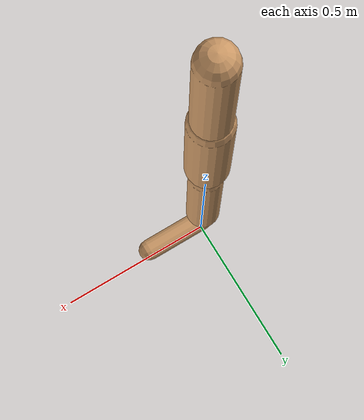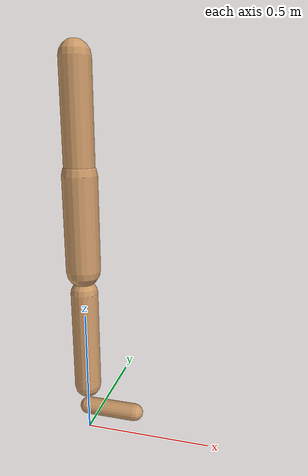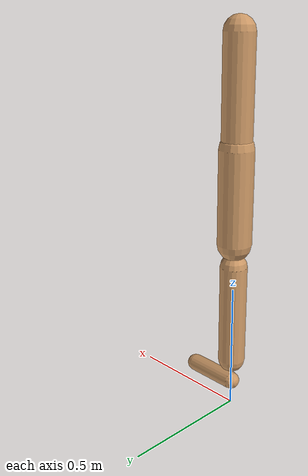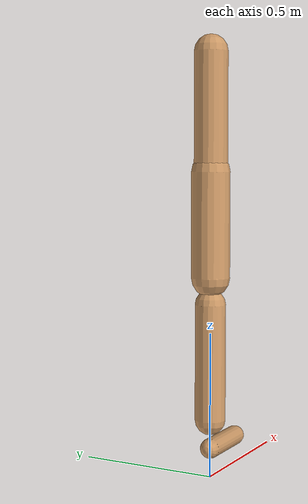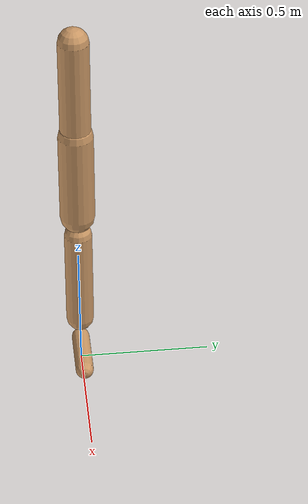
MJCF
<mujoco model="walker2d">
  <compiler angle="degree" coordinate="global" inertiafromgeom="true" />
  <default>
    <joint armature="0.01" damping=".1" limited="true" />
    <geom conaffinity="0" condim="3" contype="1" density="1000" friction="0.8 .1 .1" rgba="0.8 0.6 .4 1" />
  </default>
  <option integrator="RK4" timestep="0.002" />
  <worldbody>

    <body name="torso" pos="0 0 -0.19375841945789088">
      <joint armature="0" axis="1 0 0" damping="0" limited="false" name="ignorex" pos="0 0 0" stiffness="0" type="slide" />
      <joint armature="0" axis="0 0 1" damping="0" limited="false" name="ignorez" pos="0 0 0" ref="1.25" stiffness="0" type="slide" />
      <joint armature="0" axis="0 1 0" damping="0" limited="false" name="ignorey" pos="0 0 0" stiffness="0" type="hinge" />
      <geom fromto="0 0 1.45 0 0 1.05" name="torso_geom" size="0.05770898507665763" type="capsule" />
      <body name="thigh">
        <joint axis="0 -1 0" name="thigh_joint" pos="0 0 1.05" range="-150 0" type="hinge" />
        <geom fromto="0.0 0.0 1.05 0.0 0.0 0.6917803039537378" name="thigh_geom" size="0.06612331334319858" type="capsule" />
        <body name="leg" pos="0.0 0.0 0.09178030395373782">
          <joint axis="0 -1 0" name="leg_joint" pos="0 0 0.6" range="-150 0" type="hinge" />
          <geom fromto="0.0 0.0 0.6 0.0 0.0 0.2019781155041531" name="leg_geom" size="0.05289865067455886" type="capsule" />
          <body name="foot" pos="0.0 0.0 0.10197811550415309">
            <joint axis="0 -1 0" name="foot_joint" pos="0 0 0.1" range="-45 45" type="hinge" />
            <geom fromto="0.0 0.0 0.09999999999999999 0.19925251525608223 0.0 0.09999999999999999" name="foot_geom" size="0.034268338485343164" type="capsule" />
          </body>
        </body>
      </body>

      <body name="thigh_left">
        <joint axis="0 -1 0" name="thigh_left_joint" pos="0 0 1.05" range="-150 0" type="hinge" />
        <geom fromto="0.0 0.0 1.05 0.0 0.0 0.6917803039537378" name="thigh_left_geom" rgba=".7 .3 .6 1" size="0.06612331334319858" type="capsule" />
        <body name="leg_left" pos="0.0 0.0 0.09178030395373782">
          <joint axis="0 -1 0" name="leg_left_joint" pos="0 0 0.6" range="-150 0" type="hinge" />
          <geom fromto="0.0 0.0 0.6 0.0 0.0 0.2019781155041531" name="leg_left_geom" rgba=".7 .3 .6 1" size="0.05289865067455886" type="capsule" />
          <body name="foot_left" pos="0.0 0.0 0.10197811550415309">
            <joint axis="0 -1 0" name="foot_left_joint" pos="0 0 0.1" range="-45 45" type="hinge" />
            <geom fromto="0.0 0.0 0.09999999999999999 0.19925251525608223 0.0 0.09999999999999999" name="foot_left_geom" rgba=".7 .3 .6 1" size="0.034268338485343164" type="capsule" />
          </body>
        </body>
      </body>
    </body>
  </worldbody>
  <actuator>

    <motor ctrllimited="true" ctrlrange="-1.0 1.0" gear="100" joint="thigh_joint" />
    <motor ctrllimited="true" ctrlrange="-1.0 1.0" gear="100" joint="leg_joint" />
    <motor ctrllimited="true" ctrlrange="-1.0 1.0" gear="100" joint="foot_joint" />
    <motor ctrllimited="true" ctrlrange="-1.0 1.0" gear="100" joint="thigh_left_joint" />
    <motor ctrllimited="true" ctrlrange="-1.0 1.0" gear="100" joint="leg_left_joint" />
    <motor ctrllimited="true" ctrlrange="-1.0 1.0" gear="100" joint="foot_left_joint" />

  </actuator>
</mujoco>
